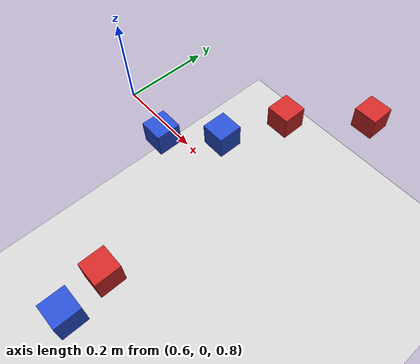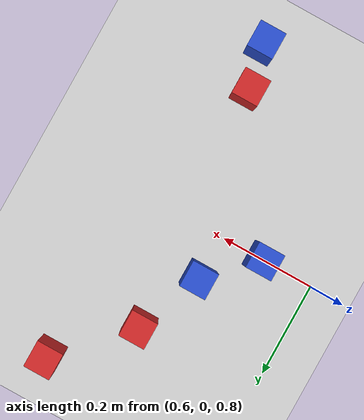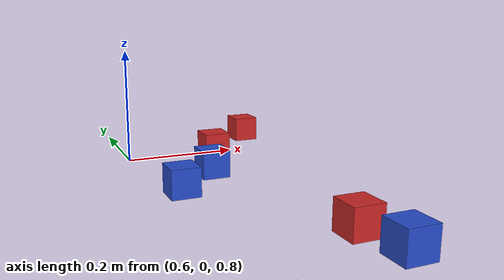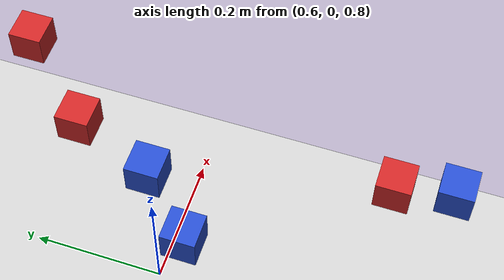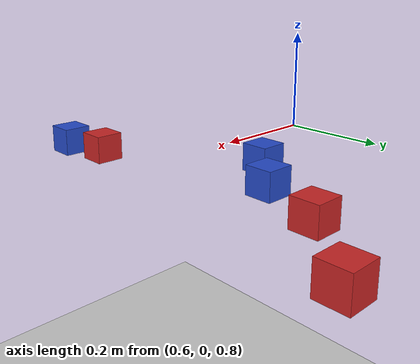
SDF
<sdf version="1.4">
 <world name="default">
  <include><uri>model://ground_plane</uri></include>
  <include><uri>model://sun</uri></include>
  <include><uri>model://demo_cube</uri><name>cube1</name><pose>0.8 0.1 0.75 0 0 0</pose></include>
  <include><uri>model://demo_cube1</uri><name>cube2</name><pose>0.9 -0.3 0.75 0 0 0</pose></include>
  <include><uri>model://demo_cube1</uri><name>cube3</name><pose>1.0 0.4 0.75 0 0 0</pose></include>
  <include><uri>model://demo_cube</uri><name>cube4</name><pose>0.7 0.0 0.75 0 0 0</pose></include>
  <include><uri>model://demo_cube1</uri><name>cube5</name><pose>0.86 0.25 0.75 0 0 0</pose></include>
  <include><uri>model://demo_cube</uri><name>cube6</name><pose>0.92 -0.4 0.75 0 0 0</pose></include>
 </world>
</sdf>

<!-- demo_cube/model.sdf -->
<sdf version='1.6'>
  <model name="demo_cube">
      <static>0</static>
      <link name='link'>
        <inertial>
          <mass>0.25</mass>
          <inertia>
            <ixx>0.001</ixx>
            <ixy>0.000000</ixy>
            <ixz>0.000000</ixz>
            <iyy>0.001</iyy>
            <iyz>0.000000</iyz>
            <izz>0.001</izz>
          </inertia>
        </inertial>
        <collision name='collision'>
          <geometry>
            <box>
              <size>0.060 0.060 0.060</size>
            </box>
          </geometry>
          <surface>
            <friction>
              <ode>
                <mu>30.0</mu>
                <mu2>30.0</mu2>
              </ode>
            </friction>
            <contact>
              <ode>
                <kp>1000000.0</kp>
                <kd>100.0</kd>
                <max_vel>1.0</max_vel>
                <min_depth>0.002</min_depth>
              </ode>
            </contact>
          </surface>
        </collision>
        <visual name='visual'>
          <geometry>
            <box>
              <size>0.060 0.060 0.060</size>
            </box>
          </geometry>
          <material>
            <script>
              <uri>file://media/materials/scripts/gazebo.material</uri>
              <name>Gazebo/Blue</name>
            </script>
          </material>
        </visual>
        <velocity_decay>
          <linear>0.000000</linear>
          <angular>0.000000</angular>
        </velocity_decay>
        <self_collide>0</self_collide>
        <kinematic>0</kinematic>
        <gravity>1</gravity>
      </link>
  </model>
</sdf>

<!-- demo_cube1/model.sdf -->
<sdf version='1.4'>
  <model name="demo_cube">
      <static>0</static>
      <link name='link'>
        <inertial>
          <mass>0.25</mass>
          <inertia>
            <ixx>0.001</ixx>
            <ixy>0.000000</ixy>
            <ixz>0.000000</ixz>
            <iyy>0.001</iyy>
            <iyz>0.000000</iyz>
            <izz>0.001</izz>
          </inertia>
        </inertial>
        <collision name='collision'>
          <geometry>
            <box>
              <size>0.060 0.060 0.060</size>
            </box>
          </geometry>
          <surface>
            <friction>
              <ode>
                <mu>30.0</mu>
                <mu2>30.0</mu2>
              </ode>
            </friction>
            <contact>
              <ode>
                <kp>1000000.0</kp>
                <kd>100.0</kd>
                <max_vel>1.0</max_vel>
                <min_depth>0.002</min_depth>
              </ode>
            </contact>
          </surface>
        </collision>
        <visual name='visual'>
          <geometry>
            <box>
              <size>0.060 0.060 0.060</size>
            </box>
          </geometry>
          <material>
            <script>
              <uri>file://media/materials/scripts/gazebo.material</uri>
              <name>Gazebo/Red</name>
            </script>
          </material>
        </visual>
        <velocity_decay>
          <linear>0.000000</linear>
          <angular>0.000000</angular>
        </velocity_decay>
        <self_collide>0</self_collide>
        <kinematic>0</kinematic>
        <gravity>1</gravity>
      </link>
  </model>
</sdf>
